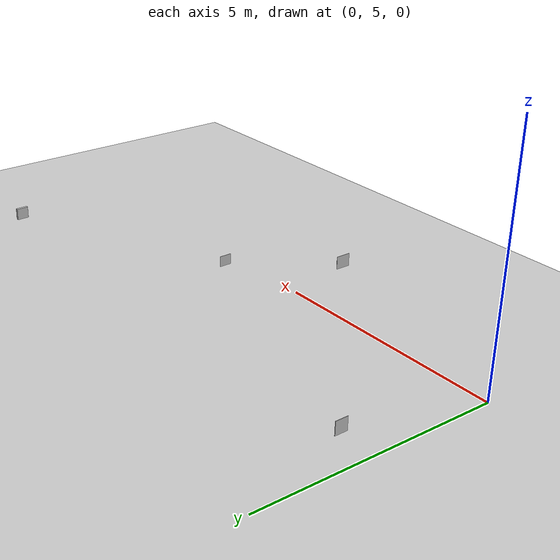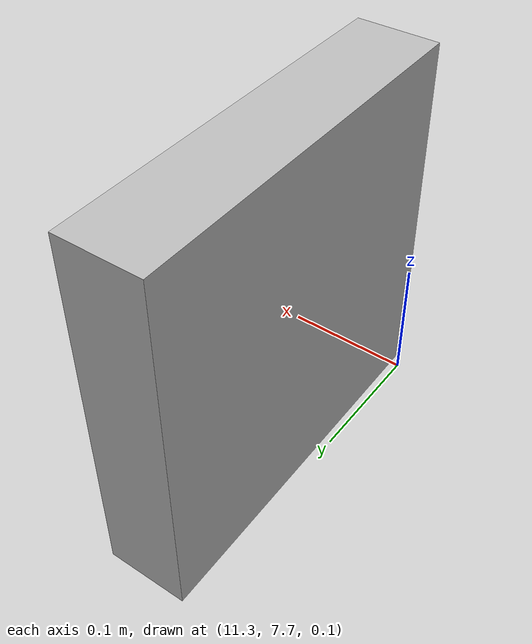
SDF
<sdf version="1.7">
 <world name="default">
  <light name="sun" type="directional">
   <pose>5.975 6.225 20 0 -0 0</pose>
   <diffuse>0.8 0.8 0.8 1</diffuse>
   <specular>0.2 0.2 0.2 1</specular>
   <attenuation>
    <range>1000</range>
    <constant>0.9</constant>
    <linear>0.01</linear>
    <quadratic>0.001</quadratic>
   </attenuation>
   <direction>-0.5 0.1 -0.9</direction>
   <spot><inner_angle>0</inner_angle><outer_angle>0</outer_angle><falloff>0</falloff></spot>
  </light>
  <model name="ground_plane">
   <static>1</static>
   <link name="link">
    <collision name="collision">
     <geometry><plane><normal>0 0 1</normal><size>100 100</size></plane></geometry>
     <surface><friction><ode><mu>100</mu><mu2>50</mu2></ode></friction></surface>
    </collision>
    <visual name="visual">
     <cast_shadows>0</cast_shadows>
     <geometry><plane><normal>0 0 1</normal><size>100 100</size></plane></geometry>
     <material>
      <script><uri>file://media/materials/scripts/gazebo.material</uri><name>Gazebo/Grey</name></script>
     </material>
    </visual>
   </link>
  </model>
  <physics type="ode">
   <real_time_update_rate>1000</real_time_update_rate>
   <max_step_size>0.001</max_step_size>
   <real_time_factor>1</real_time_factor>
   <ode>
    <solver>
     <type>quick</type>
     <iters>150</iters>
     <precon_iters>0</precon_iters>
     <sor>1.4</sor>
     <use_dynamic_moi_rescaling>1</use_dynamic_moi_rescaling>
    </solver>
    <constraints>
     <cfm>1e-05</cfm>
     <erp>0.2</erp>
     <contact_max_correcting_vel>2000</contact_max_correcting_vel>
     <contact_surface_layer>0.01</contact_surface_layer>
    </constraints>
   </ode>
  </physics>
  <scene><ambient>0.4 0.4 0.4 1</ambient><background>0.7 0.7 0.7 1</background><shadows>1</shadows></scene>
  <gravity>0 0 -9.8</gravity>
  <magnetic_field>6e-06 2.3e-05 -4.2e-05</magnetic_field>
  <atmosphere type="adiabatic"/>
  <spherical_coordinates>
   <surface_model>EARTH_WGS84</surface_model>
   <latitude_deg>0</latitude_deg>
   <longitude_deg>0</longitude_deg>
   <elevation>0</elevation>
   <heading_deg>0</heading_deg>
  </spherical_coordinates>
  <model name="qrcode1">
   <static>1</static>
   <pose>5.20198 3.58627 0.22088 0 -0 0</pose>
   <link name="link">
    <collision name="collision">
     <geometry><box><size>0.006522 0.328563 0.27971</size></box></geometry>
     <surface><friction><ode><mu>100</mu><mu2>50</mu2></ode></friction></surface>
    </collision>
    <visual name="visual">
     <geometry><box><size>0.006522 0.328563 0.27971</size></box></geometry>
     <material>
      <script>
       <uri>model://qrcode1/materials/scripts</uri>
       <uri>model://qrcode1/materials/textures</uri>
       <name>qrcode1/Image</name>
      </script>
     </material>
    </visual>
   </link>
  </model>
  <model name="qrcode3_clone">
   <static>1</static>
   <pose>0.605304 7.73206 0.289572 0 -0 0.010785</pose>
   <link name="link">
    <collision name="collision">
     <geometry><box><size>0.010945 0.265969 0.275935</size></box></geometry>
     <surface><friction><ode><mu>100</mu><mu2>50</mu2></ode></friction></surface>
    </collision>
    <visual name="visual">
     <geometry><box><size>0.010945 0.265969 0.275935</size></box></geometry>
     <material>
      <script>
       <uri>model://qrcode3/materials/scripts</uri>
       <uri>model://qrcode3/materials/textures</uri>
       <name>qrcode3/Image</name>
      </script>
     </material>
    </visual>
   </link>
  </model>
  <model name="qrcode4_clone">
   <static>1</static>
   <pose>11.3129 7.85794 0.274576 0 0 -3.12941</pose>
   <link name="link">
    <collision name="collision">
     <geometry><box><size>0.05625 0.261668 0.254755</size></box></geometry>
     <surface><friction><ode><mu>100</mu><mu2>50</mu2></ode></friction></surface>
    </collision>
    <visual name="visual">
     <geometry><box><size>0.05625 0.261668 0.254755</size></box></geometry>
     <material>
      <script>
       <uri>model://qrcode4/materials/scripts</uri>
       <uri>model://qrcode4/materials/textures</uri>
       <name>qrcode4/Image</name>
      </script>
     </material>
    </visual>
   </link>
  </model>
  <model name="qrcode2_clone">
   <static>1</static>
   <pose>6.59857 5.58363 0.263263 0 -0 0</pose>
   <link name="link">
    <collision name="collision">
     <geometry><box><size>0.006564 0.263379 0.22691</size></box></geometry>
     <surface><friction><ode><mu>100</mu><mu2>50</mu2></ode></friction></surface>
    </collision>
    <visual name="visual">
     <geometry><box><size>0.006564 0.263379 0.22691</size></box></geometry>
     <material>
      <script>
       <uri>model://qrcode2/materials/scripts</uri>
       <uri>model://qrcode2/materials/textures</uri>
       <name>qrcode2/Image</name>
      </script>
     </material>
    </visual>
   </link>
  </model>
 </world>
</sdf>
